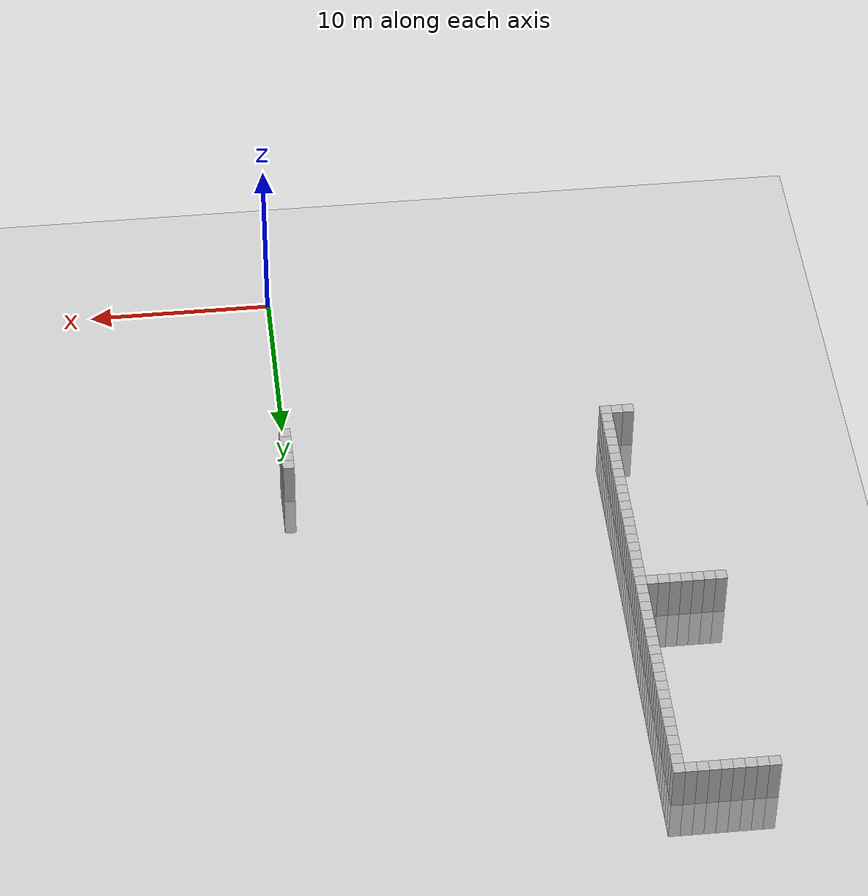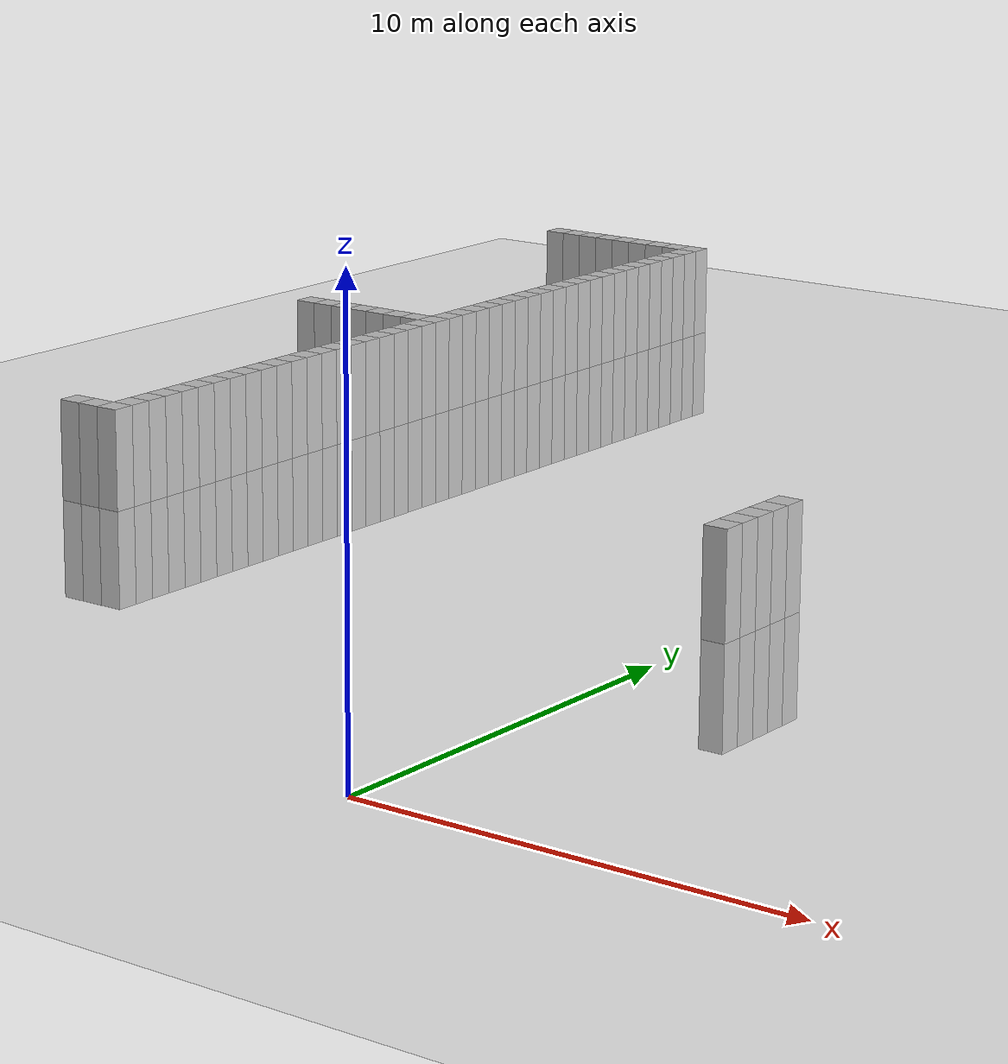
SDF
<sdf version="1.6">
 <world name="default">
  <model name="ground_plane">
   <static>1</static>
   <link name="link">
    <collision name="collision">
     <geometry><plane><normal>0 0 1</normal><size>100 100</size></plane></geometry>
     <surface><friction><ode><mu>100</mu><mu2>50</mu2></ode></friction></surface>
    </collision>
    <visual name="visual">
     <cast_shadows>0</cast_shadows>
     <geometry><plane><normal>0 0 1</normal><size>100 100</size></plane></geometry>
     <material>
      <script><uri>file://media/materials/scripts/gazebo.material</uri><name>Gazebo/Grey</name></script>
     </material>
    </visual>
   </link>
  </model>
  <model name="unit_cylinder_21">
   <static>1</static>
   <pose>0 12.6 0 0 -0 0</pose>
   <link name="link">
    <inertial>
     <mass>1</mass>
     <inertia><ixx>0.145833</ixx><ixy>0</ixy><ixz>0</ixz><iyy>0.145833</iyy><iyz>0</iyz><izz>0.125</izz></inertia>
    </inertial>
    <collision name="collision"><geometry><box><size>0.6 0.6 5</size></box></geometry></collision>
    <visual name="visual">
     <geometry><box><size>0.6 0.6 5</size></box></geometry>
     <material><ambient>0.753 0.753 0.753 1</ambient><diffuse>0.753 0.753 0.753 1</diffuse></material>
     <material>
      <script><name>Gazebo/Grey</name><uri>file://media/materials/scripts/gazebo.material</uri></script>
     </material>
    </visual>
   </link>
  </model>
  <model name="unit_cylinder_22">
   <static>1</static>
   <pose>0 13.2 0 0 -0 0</pose>
   <link name="link">
    <inertial>
     <mass>1</mass>
     <inertia><ixx>0.145833</ixx><ixy>0</ixy><ixz>0</ixz><iyy>0.145833</iyy><iyz>0</iyz><izz>0.125</izz></inertia>
    </inertial>
    <collision name="collision"><geometry><box><size>0.6 0.6 5</size></box></geometry></collision>
    <visual name="visual">
     <geometry><box><size>0.6 0.6 5</size></box></geometry>
     <material><ambient>0.753 0.753 0.753 1</ambient><diffuse>0.753 0.753 0.753 1</diffuse></material>
     <material>
      <script><name>Gazebo/Grey</name><uri>file://media/materials/scripts/gazebo.material</uri></script>
     </material>
    </visual>
   </link>
  </model>
  <model name="unit_cylinder_23">
   <static>1</static>
   <pose>0 13.8 0 0 -0 0</pose>
   <link name="link">
    <inertial>
     <mass>1</mass>
     <inertia><ixx>0.145833</ixx><ixy>0</ixy><ixz>0</ixz><iyy>0.145833</iyy><iyz>0</iyz><izz>0.125</izz></inertia>
    </inertial>
    <collision name="collision"><geometry><box><size>0.6 0.6 5</size></box></geometry></collision>
    <visual name="visual">
     <geometry><box><size>0.6 0.6 5</size></box></geometry>
     <material><ambient>0.753 0.753 0.753 1</ambient><diffuse>0.753 0.753 0.753 1</diffuse></material>
     <material>
      <script><name>Gazebo/Grey</name><uri>file://media/materials/scripts/gazebo.material</uri></script>
     </material>
    </visual>
   </link>
  </model>
  <model name="unit_cylinder_24">
   <static>1</static>
   <pose>0 14.4 0 0 -0 0</pose>
   <link name="link">
    <inertial>
     <mass>1</mass>
     <inertia><ixx>0.145833</ixx><ixy>0</ixy><ixz>0</ixz><iyy>0.145833</iyy><iyz>0</iyz><izz>0.125</izz></inertia>
    </inertial>
    <collision name="collision"><geometry><box><size>0.6 0.6 5</size></box></geometry></collision>
    <visual name="visual">
     <geometry><box><size>0.6 0.6 5</size></box></geometry>
     <material><ambient>0.753 0.753 0.753 1</ambient><diffuse>0.753 0.753 0.753 1</diffuse></material>
     <material>
      <script><name>Gazebo/Grey</name><uri>file://media/materials/scripts/gazebo.material</uri></script>
     </material>
    </visual>
   </link>
  </model>
  <model name="unit_cylinder_25">
   <static>1</static>
   <pose>0 15 0 0 -0 0</pose>
   <link name="link">
    <inertial>
     <mass>1</mass>
     <inertia><ixx>0.145833</ixx><ixy>0</ixy><ixz>0</ixz><iyy>0.145833</iyy><iyz>0</iyz><izz>0.125</izz></inertia>
    </inertial>
    <collision name="collision"><geometry><box><size>0.6 0.6 5</size></box></geometry></collision>
    <visual name="visual">
     <geometry><box><size>0.6 0.6 5</size></box></geometry>
     <material><ambient>0.753 0.753 0.753 1</ambient><diffuse>0.753 0.753 0.753 1</diffuse></material>
     <material>
      <script><name>Gazebo/Grey</name><uri>file://media/materials/scripts/gazebo.material</uri></script>
     </material>
    </visual>
   </link>
  </model>
  <model name="unit_cylinder_448">
   <static>1</static>
   <pose>-22.2 37.8 0 0 -0 0</pose>
   <link name="link">
    <inertial>
     <mass>1</mass>
     <inertia><ixx>0.145833</ixx><ixy>0</ixy><ixz>0</ixz><iyy>0.145833</iyy><iyz>0</iyz><izz>0.125</izz></inertia>
    </inertial>
    <collision name="collision"><geometry><box><size>0.6 0.6 5</size></box></geometry></collision>
    <visual name="visual">
     <geometry><box><size>0.6 0.6 5</size></box></geometry>
     <material><ambient>0.753 0.753 0.753 1</ambient><diffuse>0.753 0.753 0.753 1</diffuse></material>
     <material>
      <script><name>Gazebo/Grey</name><uri>file://media/materials/scripts/gazebo.material</uri></script>
     </material>
    </visual>
   </link>
  </model>
  <model name="unit_cylinder_451">
   <static>1</static>
   <pose>-21.6 25.2 0 0 -0 0</pose>
   <link name="link">
    <inertial>
     <mass>1</mass>
     <inertia><ixx>0.145833</ixx><ixy>0</ixy><ixz>0</ixz><iyy>0.145833</iyy><iyz>0</iyz><izz>0.125</izz></inertia>
    </inertial>
    <collision name="collision"><geometry><box><size>0.6 0.6 5</size></box></geometry></collision>
    <visual name="visual">
     <geometry><box><size>0.6 0.6 5</size></box></geometry>
     <material><ambient>0.753 0.753 0.753 1</ambient><diffuse>0.753 0.753 0.753 1</diffuse></material>
     <material>
      <script><name>Gazebo/Grey</name><uri>file://media/materials/scripts/gazebo.material</uri></script>
     </material>
    </visual>
   </link>
  </model>
  <model name="unit_cylinder_452">
   <static>1</static>
   <pose>-21.6 37.8 0 0 -0 0</pose>
   <link name="link">
    <inertial>
     <mass>1</mass>
     <inertia><ixx>0.145833</ixx><ixy>0</ixy><ixz>0</ixz><iyy>0.145833</iyy><iyz>0</iyz><izz>0.125</izz></inertia>
    </inertial>
    <collision name="collision"><geometry><box><size>0.6 0.6 5</size></box></geometry></collision>
    <visual name="visual">
     <geometry><box><size>0.6 0.6 5</size></box></geometry>
     <material><ambient>0.753 0.753 0.753 1</ambient><diffuse>0.753 0.753 0.753 1</diffuse></material>
     <material>
      <script><name>Gazebo/Grey</name><uri>file://media/materials/scripts/gazebo.material</uri></script>
     </material>
    </visual>
   </link>
  </model>
  <model name="unit_cylinder_455">
   <static>1</static>
   <pose>-21 25.2 0 0 -0 0</pose>
   <link name="link">
    <inertial>
     <mass>1</mass>
     <inertia><ixx>0.145833</ixx><ixy>0</ixy><ixz>0</ixz><iyy>0.145833</iyy><iyz>0</iyz><izz>0.125</izz></inertia>
    </inertial>
    <collision name="collision"><geometry><box><size>0.6 0.6 5</size></box></geometry></collision>
    <visual name="visual">
     <geometry><box><size>0.6 0.6 5</size></box></geometry>
     <material><ambient>0.753 0.753 0.753 1</ambient><diffuse>0.753 0.753 0.753 1</diffuse></material>
     <material>
      <script><name>Gazebo/Grey</name><uri>file://media/materials/scripts/gazebo.material</uri></script>
     </material>
    </visual>
   </link>
  </model>
  <model name="unit_cylinder_456">
   <static>1</static>
   <pose>-21 37.8 0 0 -0 0</pose>
   <link name="link">
    <inertial>
     <mass>1</mass>
     <inertia><ixx>0.145833</ixx><ixy>0</ixy><ixz>0</ixz><iyy>0.145833</iyy><iyz>0</iyz><izz>0.125</izz></inertia>
    </inertial>
    <collision name="collision"><geometry><box><size>0.6 0.6 5</size></box></geometry></collision>
    <visual name="visual">
     <geometry><box><size>0.6 0.6 5</size></box></geometry>
     <material><ambient>0.753 0.753 0.753 1</ambient><diffuse>0.753 0.753 0.753 1</diffuse></material>
     <material>
      <script><name>Gazebo/Grey</name><uri>file://media/materials/scripts/gazebo.material</uri></script>
     </material>
    </visual>
   </link>
  </model>
  <model name="unit_cylinder_459">
   <static>1</static>
   <pose>-20.4 25.2 0 0 -0 0</pose>
   <link name="link">
    <inertial>
     <mass>1</mass>
     <inertia><ixx>0.145833</ixx><ixy>0</ixy><ixz>0</ixz><iyy>0.145833</iyy><iyz>0</iyz><izz>0.125</izz></inertia>
    </inertial>
    <collision name="collision"><geometry><box><size>0.6 0.6 5</size></box></geometry></collision>
    <visual name="visual">
     <geometry><box><size>0.6 0.6 5</size></box></geometry>
     <material><ambient>0.753 0.753 0.753 1</ambient><diffuse>0.753 0.753 0.753 1</diffuse></material>
     <material>
      <script><name>Gazebo/Grey</name><uri>file://media/materials/scripts/gazebo.material</uri></script>
     </material>
    </visual>
   </link>
  </model>
  <model name="unit_cylinder_460">
   <static>1</static>
   <pose>-20.4 37.8 0 0 -0 0</pose>
   <link name="link">
    <inertial>
     <mass>1</mass>
     <inertia><ixx>0.145833</ixx><ixy>0</ixy><ixz>0</ixz><iyy>0.145833</iyy><iyz>0</iyz><izz>0.125</izz></inertia>
    </inertial>
    <collision name="collision"><geometry><box><size>0.6 0.6 5</size></box></geometry></collision>
    <visual name="visual">
     <geometry><box><size>0.6 0.6 5</size></box></geometry>
     <material><ambient>0.753 0.753 0.753 1</ambient><diffuse>0.753 0.753 0.753 1</diffuse></material>
     <material>
      <script><name>Gazebo/Grey</name><uri>file://media/materials/scripts/gazebo.material</uri></script>
     </material>
    </visual>
   </link>
  </model>
  <model name="unit_cylinder_463">
   <static>1</static>
   <pose>-19.8 25.2 0 0 -0 0</pose>
   <link name="link">
    <inertial>
     <mass>1</mass>
     <inertia><ixx>0.145833</ixx><ixy>0</ixy><ixz>0</ixz><iyy>0.145833</iyy><iyz>0</iyz><izz>0.125</izz></inertia>
    </inertial>
    <collision name="collision"><geometry><box><size>0.6 0.6 5</size></box></geometry></collision>
    <visual name="visual">
     <geometry><box><size>0.6 0.6 5</size></box></geometry>
     <material><ambient>0.753 0.753 0.753 1</ambient><diffuse>0.753 0.753 0.753 1</diffuse></material>
     <material>
      <script><name>Gazebo/Grey</name><uri>file://media/materials/scripts/gazebo.material</uri></script>
     </material>
    </visual>
   </link>
  </model>
  <model name="unit_cylinder_464">
   <static>1</static>
   <pose>-19.8 37.8 0 0 -0 0</pose>
   <link name="link">
    <inertial>
     <mass>1</mass>
     <inertia><ixx>0.145833</ixx><ixy>0</ixy><ixz>0</ixz><iyy>0.145833</iyy><iyz>0</iyz><izz>0.125</izz></inertia>
    </inertial>
    <collision name="collision"><geometry><box><size>0.6 0.6 5</size></box></geometry></collision>
    <visual name="visual">
     <geometry><box><size>0.6 0.6 5</size></box></geometry>
     <material><ambient>0.753 0.753 0.753 1</ambient><diffuse>0.753 0.753 0.753 1</diffuse></material>
     <material>
      <script><name>Gazebo/Grey</name><uri>file://media/materials/scripts/gazebo.material</uri></script>
     </material>
    </visual>
   </link>
  </model>
  <model name="unit_cylinder_467">
   <static>1</static>
   <pose>-19.2 25.2 0 0 -0 0</pose>
   <link name="link">
    <inertial>
     <mass>1</mass>
     <inertia><ixx>0.145833</ixx><ixy>0</ixy><ixz>0</ixz><iyy>0.145833</iyy><iyz>0</iyz><izz>0.125</izz></inertia>
    </inertial>
    <collision name="collision"><geometry><box><size>0.6 0.6 5</size></box></geometry></collision>
    <visual name="visual">
     <geometry><box><size>0.6 0.6 5</size></box></geometry>
     <material><ambient>0.753 0.753 0.753 1</ambient><diffuse>0.753 0.753 0.753 1</diffuse></material>
     <material>
      <script><name>Gazebo/Grey</name><uri>file://media/materials/scripts/gazebo.material</uri></script>
     </material>
    </visual>
   </link>
  </model>
  <model name="unit_cylinder_468">
   <static>1</static>
   <pose>-19.2 37.8 0 0 -0 0</pose>
   <link name="link">
    <inertial>
     <mass>1</mass>
     <inertia><ixx>0.145833</ixx><ixy>0</ixy><ixz>0</ixz><iyy>0.145833</iyy><iyz>0</iyz><izz>0.125</izz></inertia>
    </inertial>
    <collision name="collision"><geometry><box><size>0.6 0.6 5</size></box></geometry></collision>
    <visual name="visual">
     <geometry><box><size>0.6 0.6 5</size></box></geometry>
     <material><ambient>0.753 0.753 0.753 1</ambient><diffuse>0.753 0.753 0.753 1</diffuse></material>
     <material>
      <script><name>Gazebo/Grey</name><uri>file://media/materials/scripts/gazebo.material</uri></script>
     </material>
    </visual>
   </link>
  </model>
  <model name="unit_cylinder_470">
   <static>1</static>
   <pose>-18.6 12.6 0 0 -0 0</pose>
   <link name="link">
    <inertial>
     <mass>1</mass>
     <inertia><ixx>0.145833</ixx><ixy>0</ixy><ixz>0</ixz><iyy>0.145833</iyy><iyz>0</iyz><izz>0.125</izz></inertia>
    </inertial>
    <collision name="collision"><geometry><box><size>0.6 0.6 5</size></box></geometry></collision>
    <visual name="visual">
     <geometry><box><size>0.6 0.6 5</size></box></geometry>
     <material><ambient>0.753 0.753 0.753 1</ambient><diffuse>0.753 0.753 0.753 1</diffuse></material>
     <material>
      <script><name>Gazebo/Grey</name><uri>file://media/materials/scripts/gazebo.material</uri></script>
     </material>
    </visual>
   </link>
  </model>
  <model name="unit_cylinder_471">
   <static>1</static>
   <pose>-18.6 25.2 0 0 -0 0</pose>
   <link name="link">
    <inertial>
     <mass>1</mass>
     <inertia><ixx>0.145833</ixx><ixy>0</ixy><ixz>0</ixz><iyy>0.145833</iyy><iyz>0</iyz><izz>0.125</izz></inertia>
    </inertial>
    <collision name="collision"><geometry><box><size>0.6 0.6 5</size></box></geometry></collision>
    <visual name="visual">
     <geometry><box><size>0.6 0.6 5</size></box></geometry>
     <material><ambient>0.753 0.753 0.753 1</ambient><diffuse>0.753 0.753 0.753 1</diffuse></material>
     <material>
      <script><name>Gazebo/Grey</name><uri>file://media/materials/scripts/gazebo.material</uri></script>
     </material>
    </visual>
   </link>
  </model>
  <model name="unit_cylinder_472">
   <static>1</static>
   <pose>-18.6 37.8 0 0 -0 0</pose>
   <link name="link">
    <inertial>
     <mass>1</mass>
     <inertia><ixx>0.145833</ixx><ixy>0</ixy><ixz>0</ixz><iyy>0.145833</iyy><iyz>0</iyz><izz>0.125</izz></inertia>
    </inertial>
    <collision name="collision"><geometry><box><size>0.6 0.6 5</size></box></geometry></collision>
    <visual name="visual">
     <geometry><box><size>0.6 0.6 5</size></box></geometry>
     <material><ambient>0.753 0.753 0.753 1</ambient><diffuse>0.753 0.753 0.753 1</diffuse></material>
     <material>
      <script><name>Gazebo/Grey</name><uri>file://media/materials/scripts/gazebo.material</uri></script>
     </material>
    </visual>
   </link>
  </model>
  <model name="unit_cylinder_474">
   <static>1</static>
   <pose>-18 12.6 0 0 -0 0</pose>
   <link name="link">
    <inertial>
     <mass>1</mass>
     <inertia><ixx>0.145833</ixx><ixy>0</ixy><ixz>0</ixz><iyy>0.145833</iyy><iyz>0</iyz><izz>0.125</izz></inertia>
    </inertial>
    <collision name="collision"><geometry><box><size>0.6 0.6 5</size></box></geometry></collision>
    <visual name="visual">
     <geometry><box><size>0.6 0.6 5</size></box></geometry>
     <material><ambient>0.753 0.753 0.753 1</ambient><diffuse>0.753 0.753 0.753 1</diffuse></material>
     <material>
      <script><name>Gazebo/Grey</name><uri>file://media/materials/scripts/gazebo.material</uri></script>
     </material>
    </visual>
   </link>
  </model>
  <model name="unit_cylinder_475">
   <static>1</static>
   <pose>-18 25.2 0 0 -0 0</pose>
   <link name="link">
    <inertial>
     <mass>1</mass>
     <inertia><ixx>0.145833</ixx><ixy>0</ixy><ixz>0</ixz><iyy>0.145833</iyy><iyz>0</iyz><izz>0.125</izz></inertia>
    </inertial>
    <collision name="collision"><geometry><box><size>0.6 0.6 5</size></box></geometry></collision>
    <visual name="visual">
     <geometry><box><size>0.6 0.6 5</size></box></geometry>
     <material><ambient>0.753 0.753 0.753 1</ambient><diffuse>0.753 0.753 0.753 1</diffuse></material>
     <material>
      <script><name>Gazebo/Grey</name><uri>file://media/materials/scripts/gazebo.material</uri></script>
     </material>
    </visual>
   </link>
  </model>
  <model name="unit_cylinder_476">
   <static>1</static>
   <pose>-18 37.8 0 0 -0 0</pose>
   <link name="link">
    <inertial>
     <mass>1</mass>
     <inertia><ixx>0.145833</ixx><ixy>0</ixy><ixz>0</ixz><iyy>0.145833</iyy><iyz>0</iyz><izz>0.125</izz></inertia>
    </inertial>
    <collision name="collision"><geometry><box><size>0.6 0.6 5</size></box></geometry></collision>
    <visual name="visual">
     <geometry><box><size>0.6 0.6 5</size></box></geometry>
     <material><ambient>0.753 0.753 0.753 1</ambient><diffuse>0.753 0.753 0.753 1</diffuse></material>
     <material>
      <script><name>Gazebo/Grey</name><uri>file://media/materials/scripts/gazebo.material</uri></script>
     </material>
    </visual>
   </link>
  </model>
  <model name="unit_cylinder_498">
   <static>1</static>
   <pose>-17.4 12.6 0 0 -0 0</pose>
   <link name="link">
    <inertial>
     <mass>1</mass>
     <inertia><ixx>0.145833</ixx><ixy>0</ixy><ixz>0</ixz><iyy>0.145833</iyy><iyz>0</iyz><izz>0.125</izz></inertia>
    </inertial>
    <collision name="collision"><geometry><box><size>0.6 0.6 5</size></box></geometry></collision>
    <visual name="visual">
     <geometry><box><size>0.6 0.6 5</size></box></geometry>
     <material><ambient>0.753 0.753 0.753 1</ambient><diffuse>0.753 0.753 0.753 1</diffuse></material>
     <material>
      <script><name>Gazebo/Grey</name><uri>file://media/materials/scripts/gazebo.material</uri></script>
     </material>
    </visual>
   </link>
  </model>
  <model name="unit_cylinder_499">
   <static>1</static>
   <pose>-17.4 13.2 0 0 -0 0</pose>
   <link name="link">
    <inertial>
     <mass>1</mass>
     <inertia><ixx>0.145833</ixx><ixy>0</ixy><ixz>0</ixz><iyy>0.145833</iyy><iyz>0</iyz><izz>0.125</izz></inertia>
    </inertial>
    <collision name="collision"><geometry><box><size>0.6 0.6 5</size></box></geometry></collision>
    <visual name="visual">
     <geometry><box><size>0.6 0.6 5</size></box></geometry>
     <material><ambient>0.753 0.753 0.753 1</ambient><diffuse>0.753 0.753 0.753 1</diffuse></material>
     <material>
      <script><name>Gazebo/Grey</name><uri>file://media/materials/scripts/gazebo.material</uri></script>
     </material>
    </visual>
   </link>
  </model>
  <model name="unit_cylinder_500">
   <static>1</static>
   <pose>-17.4 13.8 0 0 -0 0</pose>
   <link name="link">
    <inertial>
     <mass>1</mass>
     <inertia><ixx>0.145833</ixx><ixy>0</ixy><ixz>0</ixz><iyy>0.145833</iyy><iyz>0</iyz><izz>0.125</izz></inertia>
    </inertial>
    <collision name="collision"><geometry><box><size>0.6 0.6 5</size></box></geometry></collision>
    <visual name="visual">
     <geometry><box><size>0.6 0.6 5</size></box></geometry>
     <material><ambient>0.753 0.753 0.753 1</ambient><diffuse>0.753 0.753 0.753 1</diffuse></material>
     <material>
      <script><name>Gazebo/Grey</name><uri>file://media/materials/scripts/gazebo.material</uri></script>
     </material>
    </visual>
   </link>
  </model>
  <model name="unit_cylinder_501">
   <static>1</static>
   <pose>-17.4 14.4 0 0 -0 0</pose>
   <link name="link">
    <inertial>
     <mass>1</mass>
     <inertia><ixx>0.145833</ixx><ixy>0</ixy><ixz>0</ixz><iyy>0.145833</iyy><iyz>0</iyz><izz>0.125</izz></inertia>
    </inertial>
    <collision name="collision"><geometry><box><size>0.6 0.6 5</size></box></geometry></collision>
    <visual name="visual">
     <geometry><box><size>0.6 0.6 5</size></box></geometry>
     <material><ambient>0.753 0.753 0.753 1</ambient><diffuse>0.753 0.753 0.753 1</diffuse></material>
     <material>
      <script><name>Gazebo/Grey</name><uri>file://media/materials/scripts/gazebo.material</uri></script>
     </material>
    </visual>
   </link>
  </model>
  <model name="unit_cylinder_502">
   <static>1</static>
   <pose>-17.4 15 0 0 -0 0</pose>
   <link name="link">
    <inertial>
     <mass>1</mass>
     <inertia><ixx>0.145833</ixx><ixy>0</ixy><ixz>0</ixz><iyy>0.145833</iyy><iyz>0</iyz><izz>0.125</izz></inertia>
    </inertial>
    <collision name="collision"><geometry><box><size>0.6 0.6 5</size></box></geometry></collision>
    <visual name="visual">
     <geometry><box><size>0.6 0.6 5</size></box></geometry>
     <material><ambient>0.753 0.753 0.753 1</ambient><diffuse>0.753 0.753 0.753 1</diffuse></material>
     <material>
      <script><name>Gazebo/Grey</name><uri>file://media/materials/scripts/gazebo.material</uri></script>
     </material>
    </visual>
   </link>
  </model>
  <model name="unit_cylinder_503">
   <static>1</static>
   <pose>-17.4 15.6 0 0 -0 0</pose>
   <link name="link">
    <inertial>
     <mass>1</mass>
     <inertia><ixx>0.145833</ixx><ixy>0</ixy><ixz>0</ixz><iyy>0.145833</iyy><iyz>0</iyz><izz>0.125</izz></inertia>
    </inertial>
    <collision name="collision"><geometry><box><size>0.6 0.6 5</size></box></geometry></collision>
    <visual name="visual">
     <geometry><box><size>0.6 0.6 5</size></box></geometry>
     <material><ambient>0.753 0.753 0.753 1</ambient><diffuse>0.753 0.753 0.753 1</diffuse></material>
     <material>
      <script><name>Gazebo/Grey</name><uri>file://media/materials/scripts/gazebo.material</uri></script>
     </material>
    </visual>
   </link>
  </model>
  <model name="unit_cylinder_504">
   <static>1</static>
   <pose>-17.4 16.2 0 0 -0 0</pose>
   <link name="link">
    <inertial>
     <mass>1</mass>
     <inertia><ixx>0.145833</ixx><ixy>0</ixy><ixz>0</ixz><iyy>0.145833</iyy><iyz>0</iyz><izz>0.125</izz></inertia>
    </inertial>
    <collision name="collision"><geometry><box><size>0.6 0.6 5</size></box></geometry></collision>
    <visual name="visual">
     <geometry><box><size>0.6 0.6 5</size></box></geometry>
     <material><ambient>0.753 0.753 0.753 1</ambient><diffuse>0.753 0.753 0.753 1</diffuse></material>
     <material>
      <script><name>Gazebo/Grey</name><uri>file://media/materials/scripts/gazebo.material</uri></script>
     </material>
    </visual>
   </link>
  </model>
  <model name="unit_cylinder_505">
   <static>1</static>
   <pose>-17.4 16.8 0 0 -0 0</pose>
   <link name="link">
    <inertial>
     <mass>1</mass>
     <inertia><ixx>0.145833</ixx><ixy>0</ixy><ixz>0</ixz><iyy>0.145833</iyy><iyz>0</iyz><izz>0.125</izz></inertia>
    </inertial>
    <collision name="collision"><geometry><box><size>0.6 0.6 5</size></box></geometry></collision>
    <visual name="visual">
     <geometry><box><size>0.6 0.6 5</size></box></geometry>
     <material><ambient>0.753 0.753 0.753 1</ambient><diffuse>0.753 0.753 0.753 1</diffuse></material>
     <material>
      <script><name>Gazebo/Grey</name><uri>file://media/materials/scripts/gazebo.material</uri></script>
     </material>
    </visual>
   </link>
  </model>
  <model name="unit_cylinder_506">
   <static>1</static>
   <pose>-17.4 17.4 0 0 -0 0</pose>
   <link name="link">
    <inertial>
     <mass>1</mass>
     <inertia><ixx>0.145833</ixx><ixy>0</ixy><ixz>0</ixz><iyy>0.145833</iyy><iyz>0</iyz><izz>0.125</izz></inertia>
    </inertial>
    <collision name="collision"><geometry><box><size>0.6 0.6 5</size></box></geometry></collision>
    <visual name="visual">
     <geometry><box><size>0.6 0.6 5</size></box></geometry>
     <material><ambient>0.753 0.753 0.753 1</ambient><diffuse>0.753 0.753 0.753 1</diffuse></material>
     <material>
      <script><name>Gazebo/Grey</name><uri>file://media/materials/scripts/gazebo.material</uri></script>
     </material>
    </visual>
   </link>
  </model>
  <model name="unit_cylinder_507">
   <static>1</static>
   <pose>-17.4 18 0 0 -0 0</pose>
   <link name="link">
    <inertial>
     <mass>1</mass>
     <inertia><ixx>0.145833</ixx><ixy>0</ixy><ixz>0</ixz><iyy>0.145833</iyy><iyz>0</iyz><izz>0.125</izz></inertia>
    </inertial>
    <collision name="collision"><geometry><box><size>0.6 0.6 5</size></box></geometry></collision>
    <visual name="visual">
     <geometry><box><size>0.6 0.6 5</size></box></geometry>
     <material><ambient>0.753 0.753 0.753 1</ambient><diffuse>0.753 0.753 0.753 1</diffuse></material>
     <material>
      <script><name>Gazebo/Grey</name><uri>file://media/materials/scripts/gazebo.material</uri></script>
     </material>
    </visual>
   </link>
  </model>
  <model name="unit_cylinder_508">
   <static>1</static>
   <pose>-17.4 18.6 0 0 -0 0</pose>
   <link name="link">
    <inertial>
     <mass>1</mass>
     <inertia><ixx>0.145833</ixx><ixy>0</ixy><ixz>0</ixz><iyy>0.145833</iyy><iyz>0</iyz><izz>0.125</izz></inertia>
    </inertial>
    <collision name="collision"><geometry><box><size>0.6 0.6 5</size></box></geometry></collision>
    <visual name="visual">
     <geometry><box><size>0.6 0.6 5</size></box></geometry>
     <material><ambient>0.753 0.753 0.753 1</ambient><diffuse>0.753 0.753 0.753 1</diffuse></material>
     <material>
      <script><name>Gazebo/Grey</name><uri>file://media/materials/scripts/gazebo.material</uri></script>
     </material>
    </visual>
   </link>
  </model>
  <model name="unit_cylinder_509">
   <static>1</static>
   <pose>-17.4 19.2 0 0 -0 0</pose>
   <link name="link">
    <inertial>
     <mass>1</mass>
     <inertia><ixx>0.145833</ixx><ixy>0</ixy><ixz>0</ixz><iyy>0.145833</iyy><iyz>0</iyz><izz>0.125</izz></inertia>
    </inertial>
    <collision name="collision"><geometry><box><size>0.6 0.6 5</size></box></geometry></collision>
    <visual name="visual">
     <geometry><box><size>0.6 0.6 5</size></box></geometry>
     <material><ambient>0.753 0.753 0.753 1</ambient><diffuse>0.753 0.753 0.753 1</diffuse></material>
     <material>
      <script><name>Gazebo/Grey</name><uri>file://media/materials/scripts/gazebo.material</uri></script>
     </material>
    </visual>
   </link>
  </model>
  <model name="unit_cylinder_510">
   <static>1</static>
   <pose>-17.4 19.8 0 0 -0 0</pose>
   <link name="link">
    <inertial>
     <mass>1</mass>
     <inertia><ixx>0.145833</ixx><ixy>0</ixy><ixz>0</ixz><iyy>0.145833</iyy><iyz>0</iyz><izz>0.125</izz></inertia>
    </inertial>
    <collision name="collision"><geometry><box><size>0.6 0.6 5</size></box></geometry></collision>
    <visual name="visual">
     <geometry><box><size>0.6 0.6 5</size></box></geometry>
     <material><ambient>0.753 0.753 0.753 1</ambient><diffuse>0.753 0.753 0.753 1</diffuse></material>
     <material>
      <script><name>Gazebo/Grey</name><uri>file://media/materials/scripts/gazebo.material</uri></script>
     </material>
    </visual>
   </link>
  </model>
  <model name="unit_cylinder_511">
   <static>1</static>
   <pose>-17.4 20.4 0 0 -0 0</pose>
   <link name="link">
    <inertial>
     <mass>1</mass>
     <inertia><ixx>0.145833</ixx><ixy>0</ixy><ixz>0</ixz><iyy>0.145833</iyy><iyz>0</iyz><izz>0.125</izz></inertia>
    </inertial>
    <collision name="collision"><geometry><box><size>0.6 0.6 5</size></box></geometry></collision>
    <visual name="visual">
     <geometry><box><size>0.6 0.6 5</size></box></geometry>
     <material><ambient>0.753 0.753 0.753 1</ambient><diffuse>0.753 0.753 0.753 1</diffuse></material>
     <material>
      <script><name>Gazebo/Grey</name><uri>file://media/materials/scripts/gazebo.material</uri></script>
     </material>
    </visual>
   </link>
  </model>
  <model name="unit_cylinder_512">
   <static>1</static>
   <pose>-17.4 21 0 0 -0 0</pose>
   <link name="link">
    <inertial>
     <mass>1</mass>
     <inertia><ixx>0.145833</ixx><ixy>0</ixy><ixz>0</ixz><iyy>0.145833</iyy><iyz>0</iyz><izz>0.125</izz></inertia>
    </inertial>
    <collision name="collision"><geometry><box><size>0.6 0.6 5</size></box></geometry></collision>
    <visual name="visual">
     <geometry><box><size>0.6 0.6 5</size></box></geometry>
     <material><ambient>0.753 0.753 0.753 1</ambient><diffuse>0.753 0.753 0.753 1</diffuse></material>
     <material>
      <script><name>Gazebo/Grey</name><uri>file://media/materials/scripts/gazebo.material</uri></script>
     </material>
    </visual>
   </link>
  </model>
  <model name="unit_cylinder_513">
   <static>1</static>
   <pose>-17.4 21.6 0 0 -0 0</pose>
   <link name="link">
    <inertial>
     <mass>1</mass>
     <inertia><ixx>0.145833</ixx><ixy>0</ixy><ixz>0</ixz><iyy>0.145833</iyy><iyz>0</iyz><izz>0.125</izz></inertia>
    </inertial>
    <collision name="collision"><geometry><box><size>0.6 0.6 5</size></box></geometry></collision>
    <visual name="visual">
     <geometry><box><size>0.6 0.6 5</size></box></geometry>
     <material><ambient>0.753 0.753 0.753 1</ambient><diffuse>0.753 0.753 0.753 1</diffuse></material>
     <material>
      <script><name>Gazebo/Grey</name><uri>file://media/materials/scripts/gazebo.material</uri></script>
     </material>
    </visual>
   </link>
  </model>
  <model name="unit_cylinder_514">
   <static>1</static>
   <pose>-17.4 22.2 0 0 -0 0</pose>
   <link name="link">
    <inertial>
     <mass>1</mass>
     <inertia><ixx>0.145833</ixx><ixy>0</ixy><ixz>0</ixz><iyy>0.145833</iyy><iyz>0</iyz><izz>0.125</izz></inertia>
    </inertial>
    <collision name="collision"><geometry><box><size>0.6 0.6 5</size></box></geometry></collision>
    <visual name="visual">
     <geometry><box><size>0.6 0.6 5</size></box></geometry>
     <material><ambient>0.753 0.753 0.753 1</ambient><diffuse>0.753 0.753 0.753 1</diffuse></material>
     <material>
      <script><name>Gazebo/Grey</name><uri>file://media/materials/scripts/gazebo.material</uri></script>
     </material>
    </visual>
   </link>
  </model>
  <model name="unit_cylinder_515">
   <static>1</static>
   <pose>-17.4 22.8 0 0 -0 0</pose>
   <link name="link">
    <inertial>
     <mass>1</mass>
     <inertia><ixx>0.145833</ixx><ixy>0</ixy><ixz>0</ixz><iyy>0.145833</iyy><iyz>0</iyz><izz>0.125</izz></inertia>
    </inertial>
    <collision name="collision"><geometry><box><size>0.6 0.6 5</size></box></geometry></collision>
    <visual name="visual">
     <geometry><box><size>0.6 0.6 5</size></box></geometry>
     <material><ambient>0.753 0.753 0.753 1</ambient><diffuse>0.753 0.753 0.753 1</diffuse></material>
     <material>
      <script><name>Gazebo/Grey</name><uri>file://media/materials/scripts/gazebo.material</uri></script>
     </material>
    </visual>
   </link>
  </model>
  <model name="unit_cylinder_516">
   <static>1</static>
   <pose>-17.4 23.4 0 0 -0 0</pose>
   <link name="link">
    <inertial>
     <mass>1</mass>
     <inertia><ixx>0.145833</ixx><ixy>0</ixy><ixz>0</ixz><iyy>0.145833</iyy><iyz>0</iyz><izz>0.125</izz></inertia>
    </inertial>
    <collision name="collision"><geometry><box><size>0.6 0.6 5</size></box></geometry></collision>
    <visual name="visual">
     <geometry><box><size>0.6 0.6 5</size></box></geometry>
     <material><ambient>0.753 0.753 0.753 1</ambient><diffuse>0.753 0.753 0.753 1</diffuse></material>
     <material>
      <script><name>Gazebo/Grey</name><uri>file://media/materials/scripts/gazebo.material</uri></script>
     </material>
    </visual>
   </link>
  </model>
  <model name="unit_cylinder_517">
   <static>1</static>
   <pose>-17.4 24 0 0 -0 0</pose>
   <link name="link">
    <inertial>
     <mass>1</mass>
     <inertia><ixx>0.145833</ixx><ixy>0</ixy><ixz>0</ixz><iyy>0.145833</iyy><iyz>0</iyz><izz>0.125</izz></inertia>
    </inertial>
    <collision name="collision"><geometry><box><size>0.6 0.6 5</size></box></geometry></collision>
    <visual name="visual">
     <geometry><box><size>0.6 0.6 5</size></box></geometry>
     <material><ambient>0.753 0.753 0.753 1</ambient><diffuse>0.753 0.753 0.753 1</diffuse></material>
     <material>
      <script><name>Gazebo/Grey</name><uri>file://media/materials/scripts/gazebo.material</uri></script>
     </material>
    </visual>
   </link>
  </model>
  <model name="unit_cylinder_518">
   <static>1</static>
   <pose>-17.4 24.6 0 0 -0 0</pose>
   <link name="link">
    <inertial>
     <mass>1</mass>
     <inertia><ixx>0.145833</ixx><ixy>0</ixy><ixz>0</ixz><iyy>0.145833</iyy><iyz>0</iyz><izz>0.125</izz></inertia>
    </inertial>
    <collision name="collision"><geometry><box><size>0.6 0.6 5</size></box></geometry></collision>
    <visual name="visual">
     <geometry><box><size>0.6 0.6 5</size></box></geometry>
     <material><ambient>0.753 0.753 0.753 1</ambient><diffuse>0.753 0.753 0.753 1</diffuse></material>
     <material>
      <script><name>Gazebo/Grey</name><uri>file://media/materials/scripts/gazebo.material</uri></script>
     </material>
    </visual>
   </link>
  </model>
  <model name="unit_cylinder_519">
   <static>1</static>
   <pose>-17.4 25.2 0 0 -0 0</pose>
   <link name="link">
    <inertial>
     <mass>1</mass>
     <inertia><ixx>0.145833</ixx><ixy>0</ixy><ixz>0</ixz><iyy>0.145833</iyy><iyz>0</iyz><izz>0.125</izz></inertia>
    </inertial>
    <collision name="collision"><geometry><box><size>0.6 0.6 5</size></box></geometry></collision>
    <visual name="visual">
     <geometry><box><size>0.6 0.6 5</size></box></geometry>
     <material><ambient>0.753 0.753 0.753 1</ambient><diffuse>0.753 0.753 0.753 1</diffuse></material>
     <material>
      <script><name>Gazebo/Grey</name><uri>file://media/materials/scripts/gazebo.material</uri></script>
     </material>
    </visual>
   </link>
  </model>
  <model name="unit_cylinder_520">
   <static>1</static>
   <pose>-17.4 25.8 0 0 -0 0</pose>
   <link name="link">
    <inertial>
     <mass>1</mass>
     <inertia><ixx>0.145833</ixx><ixy>0</ixy><ixz>0</ixz><iyy>0.145833</iyy><iyz>0</iyz><izz>0.125</izz></inertia>
    </inertial>
    <collision name="collision"><geometry><box><size>0.6 0.6 5</size></box></geometry></collision>
    <visual name="visual">
     <geometry><box><size>0.6 0.6 5</size></box></geometry>
     <material><ambient>0.753 0.753 0.753 1</ambient><diffuse>0.753 0.753 0.753 1</diffuse></material>
     <material>
      <script><name>Gazebo/Grey</name><uri>file://media/materials/scripts/gazebo.material</uri></script>
     </material>
    </visual>
   </link>
  </model>
  <model name="unit_cylinder_521">
   <static>1</static>
   <pose>-17.4 26.4 0 0 -0 0</pose>
   <link name="link">
    <inertial>
     <mass>1</mass>
     <inertia><ixx>0.145833</ixx><ixy>0</ixy><ixz>0</ixz><iyy>0.145833</iyy><iyz>0</iyz><izz>0.125</izz></inertia>
    </inertial>
    <collision name="collision"><geometry><box><size>0.6 0.6 5</size></box></geometry></collision>
    <visual name="visual">
     <geometry><box><size>0.6 0.6 5</size></box></geometry>
     <material><ambient>0.753 0.753 0.753 1</ambient><diffuse>0.753 0.753 0.753 1</diffuse></material>
     <material>
      <script><name>Gazebo/Grey</name><uri>file://media/materials/scripts/gazebo.material</uri></script>
     </material>
    </visual>
   </link>
  </model>
  <model name="unit_cylinder_522">
   <static>1</static>
   <pose>-17.4 27 0 0 -0 0</pose>
   <link name="link">
    <inertial>
     <mass>1</mass>
     <inertia><ixx>0.145833</ixx><ixy>0</ixy><ixz>0</ixz><iyy>0.145833</iyy><iyz>0</iyz><izz>0.125</izz></inertia>
    </inertial>
    <collision name="collision"><geometry><box><size>0.6 0.6 5</size></box></geometry></collision>
    <visual name="visual">
     <geometry><box><size>0.6 0.6 5</size></box></geometry>
     <material><ambient>0.753 0.753 0.753 1</ambient><diffuse>0.753 0.753 0.753 1</diffuse></material>
     <material>
      <script><name>Gazebo/Grey</name><uri>file://media/materials/scripts/gazebo.material</uri></script>
     </material>
    </visual>
   </link>
  </model>
  <model name="unit_cylinder_523">
   <static>1</static>
   <pose>-17.4 27.6 0 0 -0 0</pose>
   <link name="link">
    <inertial>
     <mass>1</mass>
     <inertia><ixx>0.145833</ixx><ixy>0</ixy><ixz>0</ixz><iyy>0.145833</iyy><iyz>0</iyz><izz>0.125</izz></inertia>
    </inertial>
    <collision name="collision"><geometry><box><size>0.6 0.6 5</size></box></geometry></collision>
    <visual name="visual">
     <geometry><box><size>0.6 0.6 5</size></box></geometry>
     <material><ambient>0.753 0.753 0.753 1</ambient><diffuse>0.753 0.753 0.753 1</diffuse></material>
     <material>
      <script><name>Gazebo/Grey</name><uri>file://media/materials/scripts/gazebo.material</uri></script>
     </material>
    </visual>
   </link>
  </model>
  <model name="unit_cylinder_524">
   <static>1</static>
   <pose>-17.4 28.2 0 0 -0 0</pose>
   <link name="link">
    <inertial>
     <mass>1</mass>
     <inertia><ixx>0.145833</ixx><ixy>0</ixy><ixz>0</ixz><iyy>0.145833</iyy><iyz>0</iyz><izz>0.125</izz></inertia>
    </inertial>
    <collision name="collision"><geometry><box><size>0.6 0.6 5</size></box></geometry></collision>
    <visual name="visual">
     <geometry><box><size>0.6 0.6 5</size></box></geometry>
     <material><ambient>0.753 0.753 0.753 1</ambient><diffuse>0.753 0.753 0.753 1</diffuse></material>
     <material>
      <script><name>Gazebo/Grey</name><uri>file://media/materials/scripts/gazebo.material</uri></script>
     </material>
    </visual>
   </link>
  </model>
  <model name="unit_cylinder_525">
   <static>1</static>
   <pose>-17.4 28.8 0 0 -0 0</pose>
   <link name="link">
    <inertial>
     <mass>1</mass>
     <inertia><ixx>0.145833</ixx><ixy>0</ixy><ixz>0</ixz><iyy>0.145833</iyy><iyz>0</iyz><izz>0.125</izz></inertia>
    </inertial>
    <collision name="collision"><geometry><box><size>0.6 0.6 5</size></box></geometry></collision>
    <visual name="visual">
     <geometry><box><size>0.6 0.6 5</size></box></geometry>
     <material><ambient>0.753 0.753 0.753 1</ambient><diffuse>0.753 0.753 0.753 1</diffuse></material>
     <material>
      <script><name>Gazebo/Grey</name><uri>file://media/materials/scripts/gazebo.material</uri></script>
     </material>
    </visual>
   </link>
  </model>
  <model name="unit_cylinder_526">
   <static>1</static>
   <pose>-17.4 29.4 0 0 -0 0</pose>
   <link name="link">
    <inertial>
     <mass>1</mass>
     <inertia><ixx>0.145833</ixx><ixy>0</ixy><ixz>0</ixz><iyy>0.145833</iyy><iyz>0</iyz><izz>0.125</izz></inertia>
    </inertial>
    <collision name="collision"><geometry><box><size>0.6 0.6 5</size></box></geometry></collision>
    <visual name="visual">
     <geometry><box><size>0.6 0.6 5</size></box></geometry>
     <material><ambient>0.753 0.753 0.753 1</ambient><diffuse>0.753 0.753 0.753 1</diffuse></material>
     <material>
      <script><name>Gazebo/Grey</name><uri>file://media/materials/scripts/gazebo.material</uri></script>
     </material>
    </visual>
   </link>
  </model>
  <model name="unit_cylinder_527">
   <static>1</static>
   <pose>-17.4 30 0 0 -0 0</pose>
   <link name="link">
    <inertial>
     <mass>1</mass>
     <inertia><ixx>0.145833</ixx><ixy>0</ixy><ixz>0</ixz><iyy>0.145833</iyy><iyz>0</iyz><izz>0.125</izz></inertia>
    </inertial>
    <collision name="collision"><geometry><box><size>0.6 0.6 5</size></box></geometry></collision>
    <visual name="visual">
     <geometry><box><size>0.6 0.6 5</size></box></geometry>
     <material><ambient>0.753 0.753 0.753 1</ambient><diffuse>0.753 0.753 0.753 1</diffuse></material>
     <material>
      <script><name>Gazebo/Grey</name><uri>file://media/materials/scripts/gazebo.material</uri></script>
     </material>
    </visual>
   </link>
  </model>
  <model name="unit_cylinder_528">
   <static>1</static>
   <pose>-17.4 30.6 0 0 -0 0</pose>
   <link name="link">
    <inertial>
     <mass>1</mass>
     <inertia><ixx>0.145833</ixx><ixy>0</ixy><ixz>0</ixz><iyy>0.145833</iyy><iyz>0</iyz><izz>0.125</izz></inertia>
    </inertial>
    <collision name="collision"><geometry><box><size>0.6 0.6 5</size></box></geometry></collision>
    <visual name="visual">
     <geometry><box><size>0.6 0.6 5</size></box></geometry>
     <material><ambient>0.753 0.753 0.753 1</ambient><diffuse>0.753 0.753 0.753 1</diffuse></material>
     <material>
      <script><name>Gazebo/Grey</name><uri>file://media/materials/scripts/gazebo.material</uri></script>
     </material>
    </visual>
   </link>
  </model>
  <model name="unit_cylinder_529">
   <static>1</static>
   <pose>-17.4 31.2 0 0 -0 0</pose>
   <link name="link">
    <inertial>
     <mass>1</mass>
     <inertia><ixx>0.145833</ixx><ixy>0</ixy><ixz>0</ixz><iyy>0.145833</iyy><iyz>0</iyz><izz>0.125</izz></inertia>
    </inertial>
    <collision name="collision"><geometry><box><size>0.6 0.6 5</size></box></geometry></collision>
    <visual name="visual">
     <geometry><box><size>0.6 0.6 5</size></box></geometry>
     <material><ambient>0.753 0.753 0.753 1</ambient><diffuse>0.753 0.753 0.753 1</diffuse></material>
     <material>
      <script><name>Gazebo/Grey</name><uri>file://media/materials/scripts/gazebo.material</uri></script>
     </material>
    </visual>
   </link>
  </model>
  <model name="unit_cylinder_530">
   <static>1</static>
   <pose>-17.4 31.8 0 0 -0 0</pose>
   <link name="link">
    <inertial>
     <mass>1</mass>
     <inertia><ixx>0.145833</ixx><ixy>0</ixy><ixz>0</ixz><iyy>0.145833</iyy><iyz>0</iyz><izz>0.125</izz></inertia>
    </inertial>
    <collision name="collision"><geometry><box><size>0.6 0.6 5</size></box></geometry></collision>
    <visual name="visual">
     <geometry><box><size>0.6 0.6 5</size></box></geometry>
     <material><ambient>0.753 0.753 0.753 1</ambient><diffuse>0.753 0.753 0.753 1</diffuse></material>
     <material>
      <script><name>Gazebo/Grey</name><uri>file://media/materials/scripts/gazebo.material</uri></script>
     </material>
    </visual>
   </link>
  </model>
  <model name="unit_cylinder_531">
   <static>1</static>
   <pose>-17.4 32.4 0 0 -0 0</pose>
   <link name="link">
    <inertial>
     <mass>1</mass>
     <inertia><ixx>0.145833</ixx><ixy>0</ixy><ixz>0</ixz><iyy>0.145833</iyy><iyz>0</iyz><izz>0.125</izz></inertia>
    </inertial>
    <collision name="collision"><geometry><box><size>0.6 0.6 5</size></box></geometry></collision>
    <visual name="visual">
     <geometry><box><size>0.6 0.6 5</size></box></geometry>
     <material><ambient>0.753 0.753 0.753 1</ambient><diffuse>0.753 0.753 0.753 1</diffuse></material>
     <material>
      <script><name>Gazebo/Grey</name><uri>file://media/materials/scripts/gazebo.material</uri></script>
     </material>
    </visual>
   </link>
  </model>
  <model name="unit_cylinder_532">
   <static>1</static>
   <pose>-17.4 33 0 0 -0 0</pose>
   <link name="link">
    <inertial>
     <mass>1</mass>
     <inertia><ixx>0.145833</ixx><ixy>0</ixy><ixz>0</ixz><iyy>0.145833</iyy><iyz>0</iyz><izz>0.125</izz></inertia>
    </inertial>
    <collision name="collision"><geometry><box><size>0.6 0.6 5</size></box></geometry></collision>
    <visual name="visual">
     <geometry><box><size>0.6 0.6 5</size></box></geometry>
     <material><ambient>0.753 0.753 0.753 1</ambient><diffuse>0.753 0.753 0.753 1</diffuse></material>
     <material>
      <script><name>Gazebo/Grey</name><uri>file://media/materials/scripts/gazebo.material</uri></script>
     </material>
    </visual>
   </link>
  </model>
  <model name="unit_cylinder_533">
   <static>1</static>
   <pose>-17.4 33.6 0 0 -0 0</pose>
   <link name="link">
    <inertial>
     <mass>1</mass>
     <inertia><ixx>0.145833</ixx><ixy>0</ixy><ixz>0</ixz><iyy>0.145833</iyy><iyz>0</iyz><izz>0.125</izz></inertia>
    </inertial>
    <collision name="collision"><geometry><box><size>0.6 0.6 5</size></box></geometry></collision>
    <visual name="visual">
     <geometry><box><size>0.6 0.6 5</size></box></geometry>
     <material><ambient>0.753 0.753 0.753 1</ambient><diffuse>0.753 0.753 0.753 1</diffuse></material>
     <material>
      <script><name>Gazebo/Grey</name><uri>file://media/materials/scripts/gazebo.material</uri></script>
     </material>
    </visual>
   </link>
  </model>
  <model name="unit_cylinder_534">
   <static>1</static>
   <pose>-17.4 34.2 0 0 -0 0</pose>
   <link name="link">
    <inertial>
     <mass>1</mass>
     <inertia><ixx>0.145833</ixx><ixy>0</ixy><ixz>0</ixz><iyy>0.145833</iyy><iyz>0</iyz><izz>0.125</izz></inertia>
    </inertial>
    <collision name="collision"><geometry><box><size>0.6 0.6 5</size></box></geometry></collision>
    <visual name="visual">
     <geometry><box><size>0.6 0.6 5</size></box></geometry>
     <material><ambient>0.753 0.753 0.753 1</ambient><diffuse>0.753 0.753 0.753 1</diffuse></material>
     <material>
      <script><name>Gazebo/Grey</name><uri>file://media/materials/scripts/gazebo.material</uri></script>
     </material>
    </visual>
   </link>
  </model>
  <model name="unit_cylinder_535">
   <static>1</static>
   <pose>-17.4 34.8 0 0 -0 0</pose>
   <link name="link">
    <inertial>
     <mass>1</mass>
     <inertia><ixx>0.145833</ixx><ixy>0</ixy><ixz>0</ixz><iyy>0.145833</iyy><iyz>0</iyz><izz>0.125</izz></inertia>
    </inertial>
    <collision name="collision"><geometry><box><size>0.6 0.6 5</size></box></geometry></collision>
    <visual name="visual">
     <geometry><box><size>0.6 0.6 5</size></box></geometry>
     <material><ambient>0.753 0.753 0.753 1</ambient><diffuse>0.753 0.753 0.753 1</diffuse></material>
     <material>
      <script><name>Gazebo/Grey</name><uri>file://media/materials/scripts/gazebo.material</uri></script>
     </material>
    </visual>
   </link>
  </model>
  <model name="unit_cylinder_536">
   <static>1</static>
   <pose>-17.4 35.4 0 0 -0 0</pose>
   <link name="link">
    <inertial>
     <mass>1</mass>
     <inertia><ixx>0.145833</ixx><ixy>0</ixy><ixz>0</ixz><iyy>0.145833</iyy><iyz>0</iyz><izz>0.125</izz></inertia>
    </inertial>
    <collision name="collision"><geometry><box><size>0.6 0.6 5</size></box></geometry></collision>
    <visual name="visual">
     <geometry><box><size>0.6 0.6 5</size></box></geometry>
     <material><ambient>0.753 0.753 0.753 1</ambient><diffuse>0.753 0.753 0.753 1</diffuse></material>
     <material>
      <script><name>Gazebo/Grey</name><uri>file://media/materials/scripts/gazebo.material</uri></script>
     </material>
    </visual>
   </link>
  </model>
  <model name="unit_cylinder_537">
   <static>1</static>
   <pose>-17.4 36 0 0 -0 0</pose>
   <link name="link">
    <inertial>
     <mass>1</mass>
     <inertia><ixx>0.145833</ixx><ixy>0</ixy><ixz>0</ixz><iyy>0.145833</iyy><iyz>0</iyz><izz>0.125</izz></inertia>
    </inertial>
    <collision name="collision"><geometry><box><size>0.6 0.6 5</size></box></geometry></collision>
    <visual name="visual">
     <geometry><box><size>0.6 0.6 5</size></box></geometry>
     <material><ambient>0.753 0.753 0.753 1</ambient><diffuse>0.753 0.753 0.753 1</diffuse></material>
     <material>
      <script><name>Gazebo/Grey</name><uri>file://media/materials/scripts/gazebo.material</uri></script>
     </material>
    </visual>
   </link>
  </model>
  <model name="unit_cylinder_538">
   <static>1</static>
   <pose>-17.4 36.6 0 0 -0 0</pose>
   <link name="link">
    <inertial>
     <mass>1</mass>
     <inertia><ixx>0.145833</ixx><ixy>0</ixy><ixz>0</ixz><iyy>0.145833</iyy><iyz>0</iyz><izz>0.125</izz></inertia>
    </inertial>
    <collision name="collision"><geometry><box><size>0.6 0.6 5</size></box></geometry></collision>
    <visual name="visual">
     <geometry><box><size>0.6 0.6 5</size></box></geometry>
     <material><ambient>0.753 0.753 0.753 1</ambient><diffuse>0.753 0.753 0.753 1</diffuse></material>
     <material>
      <script><name>Gazebo/Grey</name><uri>file://media/materials/scripts/gazebo.material</uri></script>
     </material>
    </visual>
   </link>
  </model>
  <model name="unit_cylinder_539">
   <static>1</static>
   <pose>-17.4 37.2 0 0 -0 0</pose>
   <link name="link">
    <inertial>
     <mass>1</mass>
     <inertia><ixx>0.145833</ixx><ixy>0</ixy><ixz>0</ixz><iyy>0.145833</iyy><iyz>0</iyz><izz>0.125</izz></inertia>
    </inertial>
    <collision name="collision"><geometry><box><size>0.6 0.6 5</size></box></geometry></collision>
    <visual name="visual">
     <geometry><box><size>0.6 0.6 5</size></box></geometry>
     <material><ambient>0.753 0.753 0.753 1</ambient><diffuse>0.753 0.753 0.753 1</diffuse></material>
     <material>
      <script><name>Gazebo/Grey</name><uri>file://media/materials/scripts/gazebo.material</uri></script>
     </material>
    </visual>
   </link>
  </model>
  <model name="unit_cylinder_540">
   <static>1</static>
   <pose>-17.4 37.8 0 0 -0 0</pose>
   <link name="link">
    <inertial>
     <mass>1</mass>
     <inertia><ixx>0.145833</ixx><ixy>0</ixy><ixz>0</ixz><iyy>0.145833</iyy><iyz>0</iyz><izz>0.125</izz></inertia>
    </inertial>
    <collision name="collision"><geometry><box><size>0.6 0.6 5</size></box></geometry></collision>
    <visual name="visual">
     <geometry><box><size>0.6 0.6 5</size></box></geometry>
     <material><ambient>0.753 0.753 0.753 1</ambient><diffuse>0.753 0.753 0.753 1</diffuse></material>
     <material>
      <script><name>Gazebo/Grey</name><uri>file://media/materials/scripts/gazebo.material</uri></script>
     </material>
    </visual>
   </link>
  </model>
 </world>
</sdf>
